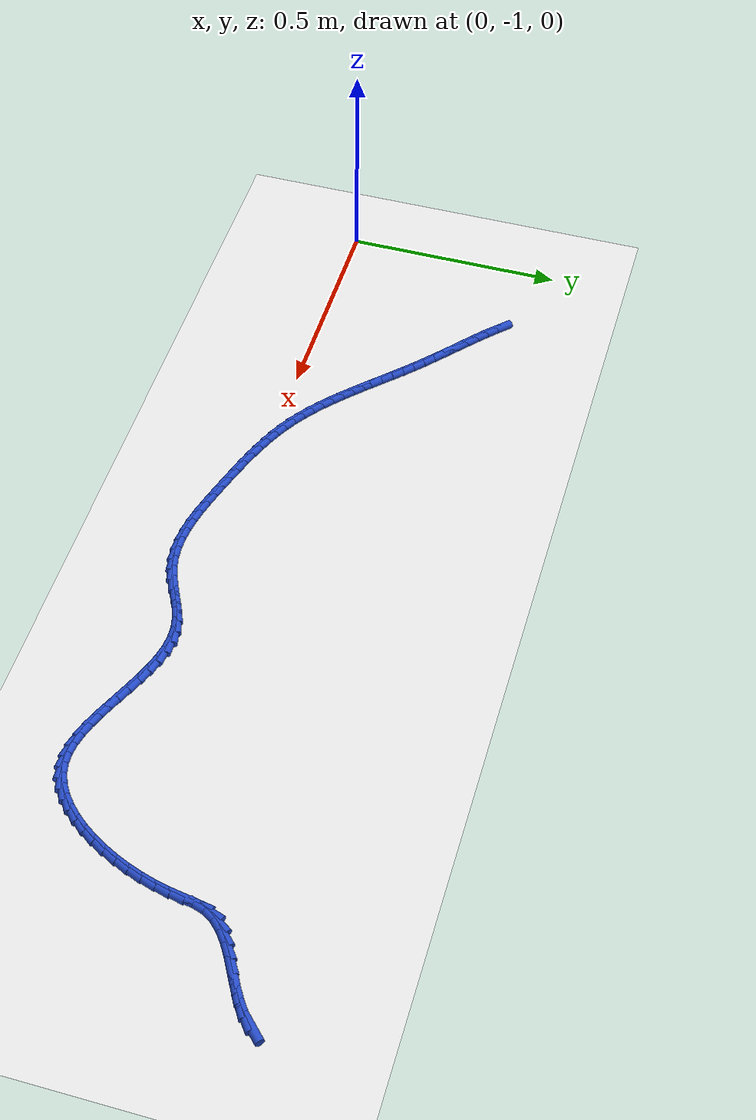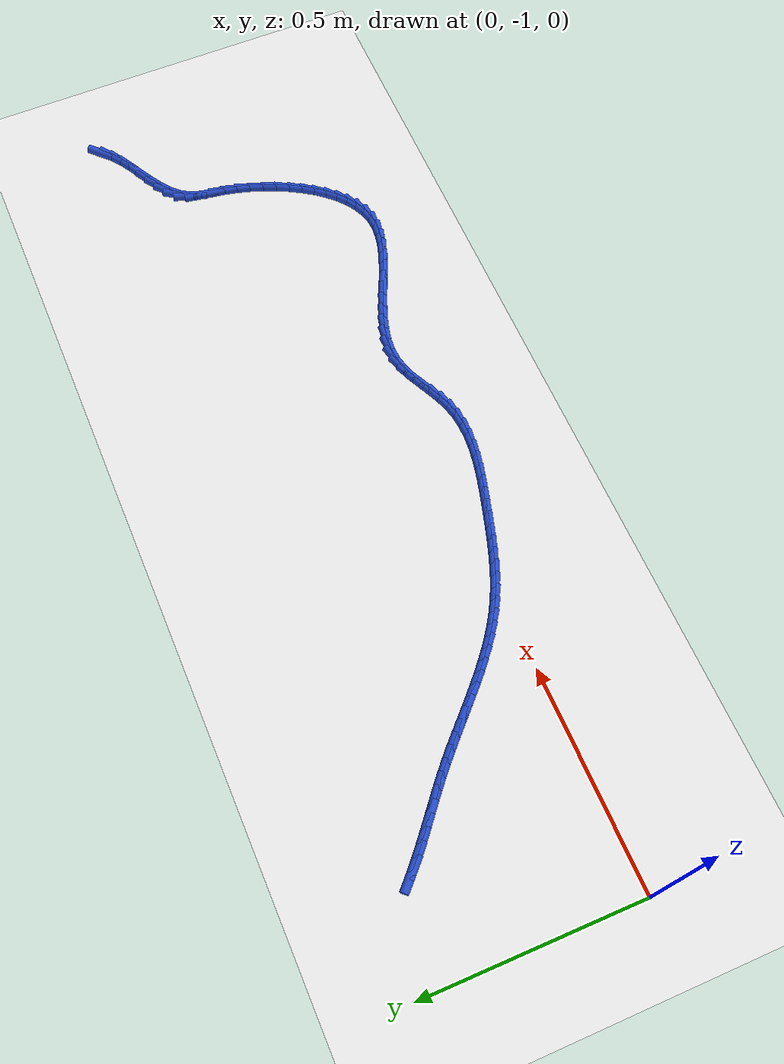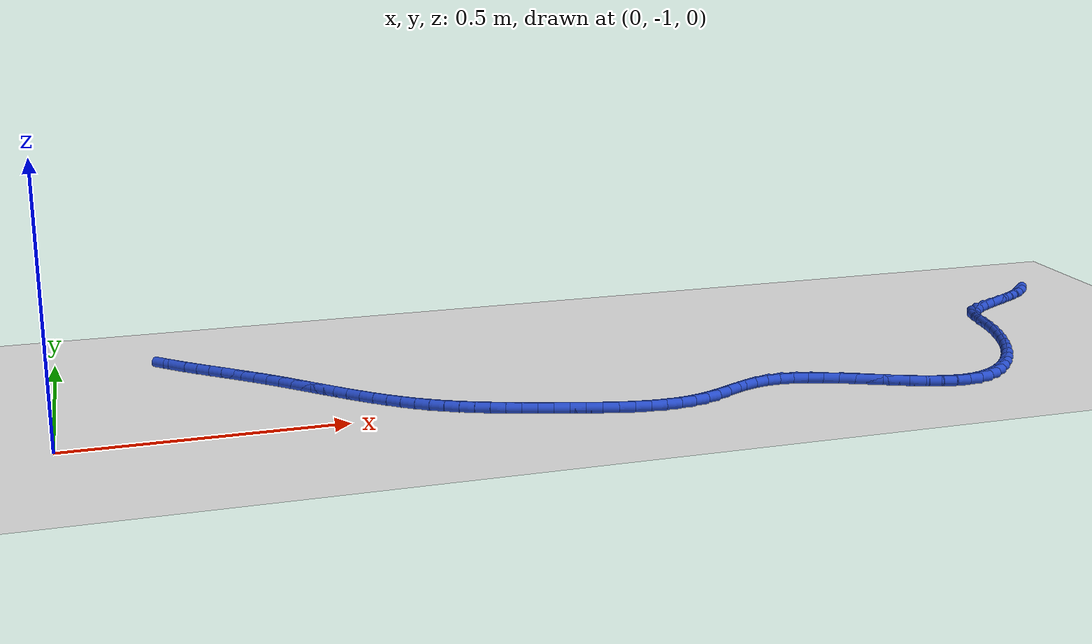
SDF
<sdf version="1.6">
 <world name="default">
  <model name="ground_plane">
   <static>1</static>
   <link name="link">
    <collision name="collision">
     <geometry><plane><normal>0 0 1</normal><size>100 100</size></plane></geometry>
     <surface><friction><ode><mu>100</mu><mu2>50</mu2></ode></friction></surface>
    </collision>
    <visual name="visual">
     <cast_shadows>0</cast_shadows>
     <geometry><plane><normal>0 0 1</normal><size>100 100</size></plane></geometry>
     <material>
      <script><uri>file://media/materials/scripts/gazebo.material</uri><name>Gazebo/WhiteGlow</name></script>
     </material>
    </visual>
   </link>
  </model>
  <model name="line">
   <link name="link_144">
    <pose>2.095544275979614 -0.5912329604137347 0.01 0 1.57 0.7838261642385299</pose>
    <collision name="collision">
     <geometry><cylinder><radius>0.01</radius><length>0.08</length></cylinder></geometry>
    </collision>
    <visual name="visual">
     <material>
      <script><name>Gazebo/Blue</name><uri>file://media/materials/scripts/gazebo.material</uri></script>
     </material>
     <geometry><cylinder><radius>0.01</radius><length>0.08</length></cylinder></geometry>
    </visual>
   </link>
   <link name="link_145">
    <pose>2.077030777775283 -0.6096883435198687 0.01 0 1.57 0.6331716686403083</pose>
    <collision name="collision">
     <geometry><cylinder><radius>0.01</radius><length>0.08</length></cylinder></geometry>
    </collision>
    <visual name="visual">
     <material>
      <script><name>Gazebo/Blue</name><uri>file://media/materials/scripts/gazebo.material</uri></script>
     </material>
     <geometry><cylinder><radius>0.01</radius><length>0.08</length></cylinder></geometry>
    </visual>
   </link>
   <link name="link_146">
    <pose>2.0545377420101216 -0.6261978664672151 0.01 0 1.57 0.5445922062567952</pose>
    <collision name="collision">
     <geometry><cylinder><radius>0.01</radius><length>0.08</length></cylinder></geometry>
    </collision>
    <visual name="visual">
     <material>
      <script><name>Gazebo/Blue</name><uri>file://media/materials/scripts/gazebo.material</uri></script>
     </material>
     <geometry><cylinder><radius>0.01</radius><length>0.08</length></cylinder></geometry>
    </visual>
   </link>
   <link name="link_147">
    <pose>2.02936120839878 -0.641447019878067 0.01 0 1.57 0.5048181021281126</pose>
    <collision name="collision">
     <geometry><cylinder><radius>0.01</radius><length>0.08</length></cylinder></geometry>
    </collision>
    <visual name="visual">
     <material>
      <script><name>Gazebo/Blue</name><uri>file://media/materials/scripts/gazebo.material</uri></script>
     </material>
     <geometry><cylinder><radius>0.01</radius><length>0.08</length></cylinder></geometry>
    </visual>
   </link>
   <link name="link_148">
    <pose>2.0028012377854947 -0.6561233981942479 0.01 0 1.57 0.5067926683065227</pose>
    <collision name="collision">
     <geometry><cylinder><radius>0.01</radius><length>0.08</length></cylinder></geometry>
    </collision>
    <visual name="visual">
     <material>
      <script><name>Gazebo/Blue</name><uri>file://media/materials/scripts/gazebo.material</uri></script>
     </material>
     <geometry><cylinder><radius>0.01</radius><length>0.08</length></cylinder></geometry>
    </visual>
   </link>
   <link name="link_149">
    <pose>1.9761578910144972 -0.6709145958575814 0.01 0 1.57 0.5501255422974013</pose>
    <collision name="collision">
     <geometry><cylinder><radius>0.01</radius><length>0.08</length></cylinder></geometry>
    </collision>
    <visual name="visual">
     <material>
      <script><name>Gazebo/Blue</name><uri>file://media/materials/scripts/gazebo.material</uri></script>
     </material>
     <geometry><cylinder><radius>0.01</radius><length>0.08</length></cylinder></geometry>
    </visual>
   </link>
   <link name="link_150">
    <pose>1.9507312289300236 -0.6865082073098914 0.01 0 1.57 0.6407348657567844</pose>
    <collision name="collision">
     <geometry><cylinder><radius>0.01</radius><length>0.08</length></cylinder></geometry>
    </collision>
    <visual name="visual">
     <material>
      <script><name>Gazebo/Blue</name><uri>file://media/materials/scripts/gazebo.material</uri></script>
     </material>
     <geometry><cylinder><radius>0.01</radius><length>0.08</length></cylinder></geometry>
    </visual>
   </link>
   <link name="link_151">
    <pose>1.9278213123763068 -0.7035918269930009 0.01 0 1.57 0.7897812692770415</pose>
    <collision name="collision">
     <geometry><cylinder><radius>0.01</radius><length>0.08</length></cylinder></geometry>
    </collision>
    <visual name="visual">
     <material>
      <script><name>Gazebo/Blue</name><uri>file://media/materials/scripts/gazebo.material</uri></script>
     </material>
     <geometry><cylinder><radius>0.01</radius><length>0.08</length></cylinder></geometry>
    </visual>
   </link>
   <link name="link_152">
    <pose>1.908728202197583 -0.7228530493487346 0.01 0 1.57 1.0074263640930883</pose>
    <collision name="collision">
     <geometry><cylinder><radius>0.01</radius><length>0.08</length></cylinder></geometry>
    </collision>
    <visual name="visual">
     <material>
      <script><name>Gazebo/Blue</name><uri>file://media/materials/scripts/gazebo.material</uri></script>
     </material>
     <geometry><cylinder><radius>0.01</radius><length>0.08</length></cylinder></geometry>
    </visual>
   </link>
   <link name="link_153">
    <pose>1.8947519592380844 -0.7449794688189154 0.01 0 1.57 1.2640641110475357</pose>
    <collision name="collision">
     <geometry><cylinder><radius>0.01</radius><length>0.08</length></cylinder></geometry>
    </collision>
    <visual name="visual">
     <material>
      <script><name>Gazebo/Blue</name><uri>file://media/materials/scripts/gazebo.material</uri></script>
     </material>
     <geometry><cylinder><radius>0.01</radius><length>0.08</length></cylinder></geometry>
    </visual>
   </link>
   <link name="link_154">
    <pose>1.8866791675509162 -0.7704675449378441 0.01 0 1.57 1.40738361437605</pose>
    <collision name="collision">
     <geometry><cylinder><radius>0.01</radius><length>0.08</length></cylinder></geometry>
    </collision>
    <visual name="visual">
     <material>
      <script><name>Gazebo/Blue</name><uri>file://media/materials/scripts/gazebo.material</uri></script>
     </material>
     <geometry><cylinder><radius>0.01</radius><length>0.08</length></cylinder></geometry>
    </visual>
   </link>
   <link name="link_155">
    <pose>1.882040323498621 -0.7986017018949466 0.01 0 1.57 1.4082797696872005</pose>
    <collision name="collision">
     <geometry><cylinder><radius>0.01</radius><length>0.08</length></cylinder></geometry>
    </collision>
    <visual name="visual">
     <material>
      <script><name>Gazebo/Blue</name><uri>file://media/materials/scripts/gazebo.material</uri></script>
     </material>
     <geometry><cylinder><radius>0.01</radius><length>0.08</length></cylinder></geometry>
    </visual>
   </link>
   <link name="link_156">
    <pose>1.8771854437730173 -0.8282113773538302 0.01 0 1.57 1.349111790098747</pose>
    <collision name="collision">
     <geometry><cylinder><radius>0.01</radius><length>0.08</length></cylinder></geometry>
    </collision>
    <visual name="visual">
     <material>
      <script><name>Gazebo/Blue</name><uri>file://media/materials/scripts/gazebo.material</uri></script>
     </material>
     <geometry><cylinder><radius>0.01</radius><length>0.08</length></cylinder></geometry>
    </visual>
   </link>
   <link name="link_157">
    <pose>1.8703566638727402 -0.8585091472446927 0.01 0 1.57 1.2910517976575846</pose>
    <collision name="collision">
     <geometry><cylinder><radius>0.01</radius><length>0.08</length></cylinder></geometry>
    </collision>
    <visual name="visual">
     <material>
      <script><name>Gazebo/Blue</name><uri>file://media/materials/scripts/gazebo.material</uri></script>
     </material>
     <geometry><cylinder><radius>0.01</radius><length>0.08</length></cylinder></geometry>
    </visual>
   </link>
   <link name="link_158">
    <pose>1.861577560774842 -0.8890687818456128 0.01 0 1.57 1.2343122643390556</pose>
    <collision name="collision">
     <geometry><cylinder><radius>0.01</radius><length>0.08</length></cylinder></geometry>
    </collision>
    <visual name="visual">
     <material>
      <script><name>Gazebo/Blue</name><uri>file://media/materials/scripts/gazebo.material</uri></script>
     </material>
     <geometry><cylinder><radius>0.01</radius><length>0.08</length></cylinder></geometry>
    </visual>
   </link>
   <link name="link_159">
    <pose>1.8509408229411284 -0.9194780640631874 0.01 0 1.57 1.1769889881552476</pose>
    <collision name="collision">
     <geometry><cylinder><radius>0.01</radius><length>0.08</length></cylinder></geometry>
    </collision>
    <visual name="visual">
     <material>
      <script><name>Gazebo/Blue</name><uri>file://media/materials/scripts/gazebo.material</uri></script>
     </material>
     <geometry><cylinder><radius>0.01</radius><length>0.08</length></cylinder></geometry>
    </visual>
   </link>
   <link name="link_160">
    <pose>1.8385391388334051 -0.9493247768040147 0.01 0 1.57 1.117230032728141</pose>
    <collision name="collision">
     <geometry><cylinder><radius>0.01</radius><length>0.08</length></cylinder></geometry>
    </collision>
    <visual name="visual">
     <material>
      <script><name>Gazebo/Blue</name><uri>file://media/materials/scripts/gazebo.material</uri></script>
     </material>
     <geometry><cylinder><radius>0.01</radius><length>0.08</length></cylinder></geometry>
    </visual>
   </link>
   <link name="link_161">
    <pose>1.8244651969134793 -0.9781967029746926 0.01 0 1.57 1.053081972207311</pose>
    <collision name="collision">
     <geometry><cylinder><radius>0.01</radius><length>0.08</length></cylinder></geometry>
    </collision>
    <visual name="visual">
     <material>
      <script><name>Gazebo/Blue</name><uri>file://media/materials/scripts/gazebo.material</uri></script>
     </material>
     <geometry><cylinder><radius>0.01</radius><length>0.08</length></cylinder></geometry>
    </visual>
   </link>
   <link name="link_162">
    <pose>1.8088116856431558 -1.0056816254818184 0.01 0 1.57 0.9823466789098032</pose>
    <collision name="collision">
     <geometry><cylinder><radius>0.01</radius><length>0.08</length></cylinder></geometry>
    </collision>
    <visual name="visual">
     <material>
      <script><name>Gazebo/Blue</name><uri>file://media/materials/scripts/gazebo.material</uri></script>
     </material>
     <geometry><cylinder><radius>0.01</radius><length>0.08</length></cylinder></geometry>
    </visual>
   </link>
   <link name="link_163">
    <pose>1.7916712934842414 -1.0313673272319903 0.01 0 1.57 0.9024473128592188</pose>
    <collision name="collision">
     <geometry><cylinder><radius>0.01</radius><length>0.08</length></cylinder></geometry>
    </collision>
    <visual name="visual">
     <material>
      <script><name>Gazebo/Blue</name><uri>file://media/materials/scripts/gazebo.material</uri></script>
     </material>
     <geometry><cylinder><radius>0.01</radius><length>0.08</length></cylinder></geometry>
    </visual>
   </link>
   <link name="link_164">
    <pose>1.773136708898542 -1.054841591131806 0.01 0 1.57 0.8103279386347615</pose>
    <collision name="collision">
     <geometry><cylinder><radius>0.01</radius><length>0.08</length></cylinder></geometry>
    </collision>
    <visual name="visual">
     <material>
      <script><name>Gazebo/Blue</name><uri>file://media/materials/scripts/gazebo.material</uri></script>
     </material>
     <geometry><cylinder><radius>0.01</radius><length>0.08</length></cylinder></geometry>
    </visual>
   </link>
   <link name="link_165">
    <pose>1.753300620347863 -1.075692200087863 0.01 0 1.57 0.7024648672197166</pose>
    <collision name="collision">
     <geometry><cylinder><radius>0.01</radius><length>0.08</length></cylinder></geometry>
    </collision>
    <visual name="visual">
     <material>
      <script><name>Gazebo/Blue</name><uri>file://media/materials/scripts/gazebo.material</uri></script>
     </material>
     <geometry><cylinder><radius>0.01</radius><length>0.08</length></cylinder></geometry>
    </visual>
   </link>
   <link name="link_166">
    <pose>1.7322557162940104 -1.093506937006759 0.01 0 1.57 0.5751681352866296</pose>
    <collision name="collision">
     <geometry><cylinder><radius>0.01</radius><length>0.08</length></cylinder></geometry>
    </collision>
    <visual name="visual">
     <material>
      <script><name>Gazebo/Blue</name><uri>file://media/materials/scripts/gazebo.material</uri></script>
     </material>
     <geometry><cylinder><radius>0.01</radius><length>0.08</length></cylinder></geometry>
    </visual>
   </link>
   <link name="link_167">
    <pose>1.7100946851987913 -1.107873584795092 0.01 0 1.57 0.4254810826406344</pose>
    <collision name="collision">
     <geometry><cylinder><radius>0.01</radius><length>0.08</length></cylinder></geometry>
    </collision>
    <visual name="visual">
     <material>
      <script><name>Gazebo/Blue</name><uri>file://media/materials/scripts/gazebo.material</uri></script>
     </material>
     <geometry><cylinder><radius>0.01</radius><length>0.08</length></cylinder></geometry>
    </visual>
   </link>
   <link name="link_168">
    <pose>1.6869102155240108 -1.1183799263594598 0.01 0 1.57 0.25296384431243624</pose>
    <collision name="collision">
     <geometry><cylinder><radius>0.01</radius><length>0.08</length></cylinder></geometry>
    </collision>
    <visual name="visual">
     <material>
      <script><name>Gazebo/Blue</name><uri>file://media/materials/scripts/gazebo.material</uri></script>
     </material>
     <geometry><cylinder><radius>0.01</radius><length>0.08</length></cylinder></geometry>
    </visual>
   </link>
   <link name="link_169">
    <pose>1.6627949957314752 -1.1246137446064597 0.01 0 1.57 0.06875198058997602</pose>
    <collision name="collision">
     <geometry><cylinder><radius>0.01</radius><length>0.08</length></cylinder></geometry>
    </collision>
    <visual name="visual">
     <material>
      <script><name>Gazebo/Blue</name><uri>file://media/materials/scripts/gazebo.material</uri></script>
     </material>
     <geometry><cylinder><radius>0.01</radius><length>0.08</length></cylinder></geometry>
    </visual>
   </link>
   <link name="link_170">
    <pose>1.6378424986751843 -1.1263319863348733 0.01 0 1.57 -0.090091192279159</pose>
    <collision name="collision">
     <geometry><cylinder><radius>0.01</radius><length>0.08</length></cylinder></geometry>
    </collision>
    <visual name="visual">
     <material>
      <script><name>Gazebo/Blue</name><uri>file://media/materials/scripts/gazebo.material</uri></script>
     </material>
     <geometry><cylinder><radius>0.01</radius><length>0.08</length></cylinder></geometry>
    </visual>
   </link>
   <link name="link_171">
    <pose>1.6121495329567548 -1.1240109936336162 0.01 0 1.57 -0.21288288566772465</pose>
    <collision name="collision">
     <geometry><cylinder><radius>0.01</radius><length>0.08</length></cylinder></geometry>
    </collision>
    <visual name="visual">
     <material>
      <script><name>Gazebo/Blue</name><uri>file://media/materials/scripts/gazebo.material</uri></script>
     </material>
     <geometry><cylinder><radius>0.01</radius><length>0.08</length></cylinder></geometry>
    </visual>
   </link>
   <link name="link_172">
    <pose>1.5858137937492336 -1.1183183087018236 0.01 0 1.57 -0.30276888596608037</pose>
    <collision name="collision">
     <geometry><cylinder><radius>0.01</radius><length>0.08</length></cylinder></geometry>
    </collision>
    <visual name="visual">
     <material>
      <script><name>Gazebo/Blue</name><uri>file://media/materials/scripts/gazebo.material</uri></script>
     </material>
     <geometry><cylinder><radius>0.01</radius><length>0.08</length></cylinder></geometry>
    </visual>
   </link>
   <link name="link_173">
    <pose>1.5589329762327635 -1.1099214752689632 0.01 0 1.57 -0.3647039736259027</pose>
    <collision name="collision">
     <geometry><cylinder><radius>0.01</radius><length>0.08</length></cylinder></geometry>
    </collision>
    <visual name="visual">
     <material>
      <script><name>Gazebo/Blue</name><uri>file://media/materials/scripts/gazebo.material</uri></script>
     </material>
     <geometry><cylinder><radius>0.01</radius><length>0.08</length></cylinder></geometry>
    </visual>
   </link>
   <link name="link_174">
    <pose>1.5316047755874882 -1.0994880370645033 0.01 0 1.57 -0.40307565858678485</pose>
    <collision name="collision">
     <geometry><cylinder><radius>0.01</radius><length>0.08</length></cylinder></geometry>
    </collision>
    <visual name="visual">
     <material>
      <script><name>Gazebo/Blue</name><uri>file://media/materials/scripts/gazebo.material</uri></script>
     </material>
     <geometry><cylinder><radius>0.01</radius><length>0.08</length></cylinder></geometry>
    </visual>
   </link>
   <link name="link_175">
    <pose>1.5039268869935507 -1.0876855378179113 0.01 0 1.57 -0.4209338923944358</pose>
    <collision name="collision">
     <geometry><cylinder><radius>0.01</radius><length>0.08</length></cylinder></geometry>
    </collision>
    <visual name="visual">
     <material>
      <script><name>Gazebo/Blue</name><uri>file://media/materials/scripts/gazebo.material</uri></script>
     </material>
     <geometry><cylinder><radius>0.01</radius><length>0.08</length></cylinder></geometry>
    </visual>
   </link>
   <link name="link_176">
    <pose>1.4759970056310951 -1.0751815212586564 0.01 0 1.57 -0.41989213759348026</pose>
    <collision name="collision">
     <geometry><cylinder><radius>0.01</radius><length>0.08</length></cylinder></geometry>
    </collision>
    <visual name="visual">
     <material>
      <script><name>Gazebo/Blue</name><uri>file://media/materials/scripts/gazebo.material</uri></script>
     </material>
     <geometry><cylinder><radius>0.01</radius><length>0.08</length></cylinder></geometry>
    </visual>
   </link>
   <link name="link_177">
    <pose>1.4479128266802626 -1.0626435311162048 0.01 0 1.57 -0.40020161842948865</pose>
    <collision name="collision">
     <geometry><cylinder><radius>0.01</radius><length>0.08</length></cylinder></geometry>
    </collision>
    <visual name="visual">
     <material>
      <script><name>Gazebo/Blue</name><uri>file://media/materials/scripts/gazebo.material</uri></script>
     </material>
     <geometry><cylinder><radius>0.01</radius><length>0.08</length></cylinder></geometry>
    </visual>
   </link>
   <link name="link_178">
    <pose>1.4197720453211973 -1.050739111120026 0.01 0 1.57 -0.3608258814761052</pose>
    <collision name="collision">
     <geometry><cylinder><radius>0.01</radius><length>0.08</length></cylinder></geometry>
    </collision>
    <visual name="visual">
     <material>
      <script><name>Gazebo/Blue</name><uri>file://media/materials/scripts/gazebo.material</uri></script>
     </material>
     <geometry><cylinder><radius>0.01</radius><length>0.08</length></cylinder></geometry>
    </visual>
   </link>
   <link name="link_179">
    <pose>1.3916723567340425 -1.0401358049995866 0.01 0 1.57 -0.29952103471139074</pose>
    <collision name="collision">
     <geometry><cylinder><radius>0.01</radius><length>0.08</length></cylinder></geometry>
    </collision>
    <visual name="visual">
     <material>
      <script><name>Gazebo/Blue</name><uri>file://media/materials/scripts/gazebo.material</uri></script>
     </material>
     <geometry><cylinder><radius>0.01</radius><length>0.08</length></cylinder></geometry>
    </visual>
   </link>
   <link name="link_180">
    <pose>1.3637114560989416 -1.0315011564843557 0.01 0 1.57 -0.2130754392485611</pose>
    <collision name="collision">
     <geometry><cylinder><radius>0.01</radius><length>0.08</length></cylinder></geometry>
    </collision>
    <visual name="visual">
     <material>
      <script><name>Gazebo/Blue</name><uri>file://media/materials/scripts/gazebo.material</uri></script>
     </material>
     <geometry><cylinder><radius>0.01</radius><length>0.08</length></cylinder></geometry>
    </visual>
   </link>
   <link name="link_181">
    <pose>1.335987038596037 -1.0255027093038007 0.01 0 1.57 -0.09806625804564614</pose>
    <collision name="collision">
     <geometry><cylinder><radius>0.01</radius><length>0.08</length></cylinder></geometry>
    </collision>
    <visual name="visual">
     <material>
      <script><name>Gazebo/Blue</name><uri>file://media/materials/scripts/gazebo.material</uri></script>
     </material>
     <geometry><cylinder><radius>0.01</radius><length>0.08</length></cylinder></geometry>
    </visual>
   </link>
   <link name="link_182">
    <pose>1.3085967994054726 -1.0228080071873895 0.01 0 1.57 0.047318660425284834</pose>
    <collision name="collision">
     <geometry><cylinder><radius>0.01</radius><length>0.08</length></cylinder></geometry>
    </collision>
    <visual name="visual">
     <material>
      <script><name>Gazebo/Blue</name><uri>file://media/materials/scripts/gazebo.material</uri></script>
     </material>
     <geometry><cylinder><radius>0.01</radius><length>0.08</length></cylinder></geometry>
    </visual>
   </link>
   <link name="link_183">
    <pose>1.281638433707391 -1.0240845938645902 0.01 0 1.57 0.21542420478952698</pose>
    <collision name="collision">
     <geometry><cylinder><radius>0.01</radius><length>0.08</length></cylinder></geometry>
    </collision>
    <visual name="visual">
     <material>
      <script><name>Gazebo/Blue</name><uri>file://media/materials/scripts/gazebo.material</uri></script>
     </material>
     <geometry><cylinder><radius>0.01</radius><length>0.08</length></cylinder></geometry>
    </visual>
   </link>
   <link name="link_184">
    <pose>1.2551919134345522 -1.0298716131920271 0.01 0 1.57 0.3514676471819786</pose>
    <collision name="collision">
     <geometry><cylinder><radius>0.01</radius><length>0.08</length></cylinder></geometry>
    </collision>
    <visual name="visual">
     <material>
      <script><name>Gazebo/Blue</name><uri>file://media/materials/scripts/gazebo.material</uri></script>
     </material>
     <geometry><cylinder><radius>0.01</radius><length>0.08</length></cylinder></geometry>
    </visual>
   </link>
   <link name="link_185">
    <pose>1.2291590742407301 -1.0394176624873226 0.01 0 1.57 0.42891940744949536</pose>
    <collision name="collision">
     <geometry><cylinder><radius>0.01</radius><length>0.08</length></cylinder></geometry>
    </collision>
    <visual name="visual">
     <material>
      <script><name>Gazebo/Blue</name><uri>file://media/materials/scripts/gazebo.material</uri></script>
     </material>
     <geometry><cylinder><radius>0.01</radius><length>0.08</length></cylinder></geometry>
    </visual>
   </link>
   <link name="link_186">
    <pose>1.2033388191210377 -1.051225621311203 0.01 0 1.57 0.45301260273969934</pose>
    <collision name="collision">
     <geometry><cylinder><radius>0.01</radius><length>0.08</length></cylinder></geometry>
    </collision>
    <visual name="visual">
     <material>
      <script><name>Gazebo/Blue</name><uri>file://media/materials/scripts/gazebo.material</uri></script>
     </material>
     <geometry><cylinder><radius>0.01</radius><length>0.08</length></cylinder></geometry>
    </visual>
   </link>
   <link name="link_187">
    <pose>1.1775288019663568 -1.063789319820481 0.01 0 1.57 0.4264400791790593</pose>
    <collision name="collision">
     <geometry><cylinder><radius>0.01</radius><length>0.08</length></cylinder></geometry>
    </collision>
    <visual name="visual">
     <material>
      <script><name>Gazebo/Blue</name><uri>file://media/materials/scripts/gazebo.material</uri></script>
     </material>
     <geometry><cylinder><radius>0.01</radius><length>0.08</length></cylinder></geometry>
    </visual>
   </link>
   <link name="link_188">
    <pose>1.1515266766675705 -1.075602588171971 0.01 0 1.57 0.34737192918085147</pose>
    <collision name="collision">
     <geometry><cylinder><radius>0.01</radius><length>0.08</length></cylinder></geometry>
    </collision>
    <visual name="visual">
     <material>
      <script><name>Gazebo/Blue</name><uri>file://media/materials/scripts/gazebo.material</uri></script>
     </material>
     <geometry><cylinder><radius>0.01</radius><length>0.08</length></cylinder></geometry>
    </visual>
   </link>
   <link name="link_189">
    <pose>1.125130140382735 -1.0851595357552208 0.01 0 1.57 0.2266652678789258</pose>
    <collision name="collision">
     <geometry><cylinder><radius>0.01</radius><length>0.08</length></cylinder></geometry>
    </collision>
    <visual name="visual">
     <material>
      <script><name>Gazebo/Blue</name><uri>file://media/materials/scripts/gazebo.material</uri></script>
     </material>
     <geometry><cylinder><radius>0.01</radius><length>0.08</length></cylinder></geometry>
    </visual>
   </link>
   <link name="link_190">
    <pose>1.0982013213670907 -1.0913700900008554 0.01 0 1.57 0.10992228570247344</pose>
    <collision name="collision">
     <geometry><cylinder><radius>0.01</radius><length>0.08</length></cylinder></geometry>
    </collision>
    <visual name="visual">
     <material>
      <script><name>Gazebo/Blue</name><uri>file://media/materials/scripts/gazebo.material</uri></script>
     </material>
     <geometry><cylinder><radius>0.01</radius><length>0.08</length></cylinder></geometry>
    </visual>
   </link>
   <link name="link_191">
    <pose>1.0707961202481746 -1.0943947242992123 0.01 0 1.57 0.008395724677304374</pose>
    <collision name="collision">
     <geometry><cylinder><radius>0.01</radius><length>0.08</length></cylinder></geometry>
    </collision>
    <visual name="visual">
     <material>
      <script><name>Gazebo/Blue</name><uri>file://media/materials/scripts/gazebo.material</uri></script>
     </material>
     <geometry><cylinder><radius>0.01</radius><length>0.08</length></cylinder></geometry>
    </visual>
   </link>
   <link name="link_192">
    <pose>1.04300671613728 -1.0946280419671464 0.01 0 1.57 -0.07688821165952751</pose>
    <collision name="collision">
     <geometry><cylinder><radius>0.01</radius><length>0.08</length></cylinder></geometry>
    </collision>
    <visual name="visual">
     <material>
      <script><name>Gazebo/Blue</name><uri>file://media/materials/scripts/gazebo.material</uri></script>
     </material>
     <geometry><cylinder><radius>0.01</radius><length>0.08</length></cylinder></geometry>
    </visual>
   </link>
   <link name="link_193">
    <pose>1.0149252881457007 -1.0924646463215133 0.01 0 1.57 -0.14623704404957283</pose>
    <collision name="collision">
     <geometry><cylinder><radius>0.01</radius><length>0.08</length></cylinder></geometry>
    </collision>
    <visual name="visual">
     <material>
      <script><name>Gazebo/Blue</name><uri>file://media/materials/scripts/gazebo.material</uri></script>
     </material>
     <geometry><cylinder><radius>0.01</radius><length>0.08</length></cylinder></geometry>
    </visual>
   </link>
   <link name="link_194">
    <pose>0.9866440153847306 -1.0882991406791678 0.01 0 1.57 -0.20061874521563136</pose>
    <collision name="collision">
     <geometry><cylinder><radius>0.01</radius><length>0.08</length></cylinder></geometry>
    </collision>
    <visual name="visual">
     <material>
      <script><name>Gazebo/Blue</name><uri>file://media/materials/scripts/gazebo.material</uri></script>
     </material>
     <geometry><cylinder><radius>0.01</radius><length>0.08</length></cylinder></geometry>
    </visual>
   </link>
   <link name="link_195">
    <pose>0.9582550769656631 -1.0825261283569654 0.01 0 1.57 -0.24115821395360798</pose>
    <collision name="collision">
     <geometry><cylinder><radius>0.01</radius><length>0.08</length></cylinder></geometry>
    </collision>
    <visual name="visual">
     <material>
      <script><name>Gazebo/Blue</name><uri>file://media/materials/scripts/gazebo.material</uri></script>
     </material>
     <geometry><cylinder><radius>0.01</radius><length>0.08</length></cylinder></geometry>
    </visual>
   </link>
   <link name="link_196">
    <pose>0.929850651999792 -1.0755402126717608 0.01 0 1.57 -0.26882855159061647</pose>
    <collision name="collision">
     <geometry><cylinder><radius>0.01</radius><length>0.08</length></cylinder></geometry>
    </collision>
    <visual name="visual">
     <material>
      <script><name>Gazebo/Blue</name><uri>file://media/materials/scripts/gazebo.material</uri></script>
     </material>
     <geometry><cylinder><radius>0.01</radius><length>0.08</length></cylinder></geometry>
    </visual>
   </link>
   <link name="link_197">
    <pose>0.9015229195984111 -1.06773599694041 0.01 0 1.57 -0.2842820694242588</pose>
    <collision name="collision">
     <geometry><cylinder><radius>0.01</radius><length>0.08</length></cylinder></geometry>
    </collision>
    <visual name="visual">
     <material>
      <script><name>Gazebo/Blue</name><uri>file://media/materials/scripts/gazebo.material</uri></script>
     </material>
     <geometry><cylinder><radius>0.01</radius><length>0.08</length></cylinder></geometry>
    </visual>
   </link>
   <link name="link_198">
    <pose>0.873364058872814 -1.059508084479768 0.01 0 1.57 -0.2906088056534425</pose>
    <collision name="collision">
     <geometry><cylinder><radius>0.01</radius><length>0.08</length></cylinder></geometry>
    </collision>
    <visual name="visual">
     <material>
      <script><name>Gazebo/Blue</name><uri>file://media/materials/scripts/gazebo.material</uri></script>
     </material>
     <geometry><cylinder><radius>0.01</radius><length>0.08</length></cylinder></geometry>
    </visual>
   </link>
   <link name="link_199">
    <pose>0.8454612229190239 -1.0511630179498168 0.01 0 1.57 -0.29954313880037947</pose>
    <collision name="collision">
     <geometry><cylinder><radius>0.01</radius><length>0.08</length></cylinder></geometry>
    </collision>
    <visual name="visual">
     <material>
      <script><name>Gazebo/Blue</name><uri>file://media/materials/scripts/gazebo.material</uri></script>
     </material>
     <geometry><cylinder><radius>0.01</radius><length>0.08</length></cylinder></geometry>
    </visual>
   </link>
   <link name="link_200">
    <pose>0.817880897462634 -1.0426452276575549 0.01 0 1.57 -0.31423987209820237</pose>
    <collision name="collision">
     <geometry><cylinder><radius>0.01</radius><length>0.08</length></cylinder></geometry>
    </collision>
    <visual name="visual">
     <material>
      <script><name>Gazebo/Blue</name><uri>file://media/materials/scripts/gazebo.material</uri></script>
     </material>
     <geometry><cylinder><radius>0.01</radius><length>0.08</length></cylinder></geometry>
    </visual>
   </link>
   <link name="link_201">
    <pose>0.7906842566357092 -1.0338060796453488 0.01 0 1.57 -0.3348759543504548</pose>
    <collision name="collision">
     <geometry><cylinder><radius>0.01</radius><length>0.08</length></cylinder></geometry>
    </collision>
    <visual name="visual">
     <material>
      <script><name>Gazebo/Blue</name><uri>file://media/materials/scripts/gazebo.material</uri></script>
     </material>
     <geometry><cylinder><radius>0.01</radius><length>0.08</length></cylinder></geometry>
    </visual>
   </link>
   <link name="link_202">
    <pose>0.7639324745662758 -1.0244969398848105 0.01 0 1.57 -0.3616272997235385</pose>
    <collision name="collision">
     <geometry><cylinder><radius>0.01</radius><length>0.08</length></cylinder></geometry>
    </collision>
    <visual name="visual">
     <material>
      <script><name>Gazebo/Blue</name><uri>file://media/materials/scripts/gazebo.material</uri></script>
     </material>
     <geometry><cylinder><radius>0.01</radius><length>0.08</length></cylinder></geometry>
    </visual>
   </link>
   <link name="link_203">
    <pose>0.73768672538236 -1.014569174347552 0.01 0 1.57 -0.39464619661434613</pose>
    <collision name="collision">
     <geometry><cylinder><radius>0.01</radius><length>0.08</length></cylinder></geometry>
    </collision>
    <visual name="visual">
     <material>
      <script><name>Gazebo/Blue</name><uri>file://media/materials/scripts/gazebo.material</uri></script>
     </material>
     <geometry><cylinder><radius>0.01</radius><length>0.08</length></cylinder></geometry>
    </visual>
   </link>
   <link name="link_204">
    <pose>0.7120081832119883 -1.0038741490051843 0.01 0 1.57 -0.4340292124558176</pose>
    <collision name="collision">
     <geometry><cylinder><radius>0.01</radius><length>0.08</length></cylinder></geometry>
    </collision>
    <visual name="visual">
     <material>
      <script><name>Gazebo/Blue</name><uri>file://media/materials/scripts/gazebo.material</uri></script>
     </material>
     <geometry><cylinder><radius>0.01</radius><length>0.08</length></cylinder></geometry>
    </visual>
   </link>
   <link name="link_205">
    <pose>0.6869580221831868 -0.9922632298293194 0.01 0 1.57 -0.4797755624839879</pose>
    <collision name="collision">
     <geometry><cylinder><radius>0.01</radius><length>0.08</length></cylinder></geometry>
    </collision>
    <visual name="visual">
     <material>
      <script><name>Gazebo/Blue</name><uri>file://media/materials/scripts/gazebo.material</uri></script>
     </material>
     <geometry><cylinder><radius>0.01</radius><length>0.08</length></cylinder></geometry>
    </visual>
   </link>
   <link name="link_206">
    <pose>0.6625974164239823 -0.9795877827915696 0.01 0 1.57 -0.5316431478999287</pose>
    <collision name="collision">
     <geometry><cylinder><radius>0.01</radius><length>0.08</length></cylinder></geometry>
    </collision>
    <visual name="visual">
     <material>
      <script><name>Gazebo/Blue</name><uri>file://media/materials/scripts/gazebo.material</uri></script>
     </material>
     <geometry><cylinder><radius>0.01</radius><length>0.08</length></cylinder></geometry>
    </visual>
   </link>
   <link name="link_207">
    <pose>0.638986300633533 -0.9657014627300845 0.01 0 1.57 -0.5846548354020518</pose>
    <collision name="collision">
     <geometry><cylinder><radius>0.01</radius><length>0.08</length></cylinder></geometry>
    </collision>
    <visual name="visual">
     <material>
      <script><name>Gazebo/Blue</name><uri>file://media/materials/scripts/gazebo.material</uri></script>
     </material>
     <geometry><cylinder><radius>0.01</radius><length>0.08</length></cylinder></geometry>
    </visual>
   </link>
   <link name="link_208">
    <pose>0.6161238465612819 -0.9505701360717457 0.01 0 1.57 -0.6318216072892445</pose>
    <collision name="collision">
     <geometry><cylinder><radius>0.01</radius><length>0.08</length></cylinder></geometry>
    </collision>
    <visual name="visual">
     <material>
      <script><name>Gazebo/Blue</name><uri>file://media/materials/scripts/gazebo.material</uri></script>
     </material>
     <geometry><cylinder><radius>0.01</radius><length>0.08</length></cylinder></geometry>
    </visual>
   </link>
   <link name="link_209">
    <pose>0.5939221291289551 -0.9343205118861547 0.01 0 1.57 -0.6724906912054615</pose>
    <collision name="collision">
     <geometry><cylinder><radius>0.01</radius><length>0.08</length></cylinder></geometry>
    </collision>
    <visual name="visual">
     <material>
      <script><name>Gazebo/Blue</name><uri>file://media/materials/scripts/gazebo.material</uri></script>
     </material>
     <geometry><cylinder><radius>0.01</radius><length>0.08</length></cylinder></geometry>
    </visual>
   </link>
   <link name="link_210">
    <pose>0.5722865020953128 -0.917091711286398 0.01 0 1.57 -0.7066653250988362</pose>
    <collision name="collision">
     <geometry><cylinder><radius>0.01</radius><length>0.08</length></cylinder></geometry>
    </collision>
    <visual name="visual">
     <material>
      <script><name>Gazebo/Blue</name><uri>file://media/materials/scripts/gazebo.material</uri></script>
     </material>
     <geometry><cylinder><radius>0.01</radius><length>0.08</length></cylinder></geometry>
    </visual>
   </link>
   <link name="link_211">
    <pose>0.551122319219118 -0.8990228553855635 0.01 0 1.57 -0.7344377995852756</pose>
    <collision name="collision">
     <geometry><cylinder><radius>0.01</radius><length>0.08</length></cylinder></geometry>
    </collision>
    <visual name="visual">
     <material>
      <script><name>Gazebo/Blue</name><uri>file://media/materials/scripts/gazebo.material</uri></script>
     </material>
     <geometry><cylinder><radius>0.01</radius><length>0.08</length></cylinder></geometry>
    </visual>
   </link>
   <link name="link_212">
    <pose>0.5303349342591328 -0.8802530652967389 0.01 0 1.57 -0.7559457556932683</pose>
    <collision name="collision">
     <geometry><cylinder><radius>0.01</radius><length>0.08</length></cylinder></geometry>
    </collision>
    <visual name="visual">
     <material>
      <script><name>Gazebo/Blue</name><uri>file://media/materials/scripts/gazebo.material</uri></script>
     </material>
     <geometry><cylinder><radius>0.01</radius><length>0.08</length></cylinder></geometry>
    </visual>
   </link>
   <link name="link_213">
    <pose>0.5098297009741186 -0.8609214621330114 0.01 0 1.57 -0.7713385886990541</pose>
    <collision name="collision">
     <geometry><cylinder><radius>0.01</radius><length>0.08</length></cylinder></geometry>
    </collision>
    <visual name="visual">
     <material>
      <script><name>Gazebo/Blue</name><uri>file://media/materials/scripts/gazebo.material</uri></script>
     </material>
     <geometry><cylinder><radius>0.01</radius><length>0.08</length></cylinder></geometry>
    </visual>
   </link>
   <link name="link_214">
    <pose>0.48951197312283756 -0.8411671670074684 0.01 0 1.57 -0.780753636850347</pose>
    <collision name="collision">
     <geometry><cylinder><radius>0.01</radius><length>0.08</length></cylinder></geometry>
    </collision>
    <visual name="visual">
     <material>
      <script><name>Gazebo/Blue</name><uri>file://media/materials/scripts/gazebo.material</uri></script>
     </material>
     <geometry><cylinder><radius>0.01</radius><length>0.08</length></cylinder></geometry>
    </visual>
   </link>
   <link name="link_215">
    <pose>0.46928710446405153 -0.8211293010331971 0.01 0 1.57 -0.7843008828118009</pose>
    <collision name="collision">
     <geometry><cylinder><radius>0.01</radius><length>0.08</length></cylinder></geometry>
    </collision>
    <visual name="visual">
     <material>
      <script><name>Gazebo/Blue</name><uri>file://media/materials/scripts/gazebo.material</uri></script>
     </material>
     <geometry><cylinder><radius>0.01</radius><length>0.08</length></cylinder></geometry>
    </visual>
   </link>
   <link name="link_216">
    <pose>0.44906044875652257 -0.800946985323286 0.01 0 1.57 -0.7820547492149318</pose>
    <collision name="collision">
     <geometry><cylinder><radius>0.01</radius><length>0.08</length></cylinder></geometry>
    </collision>
    <visual name="visual">
     <material>
      <script><name>Gazebo/Blue</name><uri>file://media/materials/scripts/gazebo.material</uri></script>
     </material>
     <geometry><cylinder><radius>0.01</radius><length>0.08</length></cylinder></geometry>
    </visual>
   </link>
   <link name="link_217">
    <pose>0.42873735975901234 -0.7807593409908214 0.01 0 1.57 -0.7740518633086865</pose>
    <collision name="collision">
     <geometry><cylinder><radius>0.01</radius><length>0.08</length></cylinder></geometry>
    </collision>
    <visual name="visual">
     <material>
      <script><name>Gazebo/Blue</name><uri>file://media/materials/scripts/gazebo.material</uri></script>
     </material>
     <geometry><cylinder><radius>0.01</radius><length>0.08</length></cylinder></geometry>
    </visual>
   </link>
   <link name="link_218">
    <pose>0.4082231912302832 -0.7607054891488916 0.01 0 1.57 -0.7602941441492547</pose>
    <collision name="collision">
     <geometry><cylinder><radius>0.01</radius><length>0.08</length></cylinder></geometry>
    </collision>
    <visual name="visual">
     <material>
      <script><name>Gazebo/Blue</name><uri>file://media/materials/scripts/gazebo.material</uri></script>
     </material>
     <geometry><cylinder><radius>0.01</radius><length>0.08</length></cylinder></geometry>
    </visual>
   </link>
   <link name="link_219">
    <pose>0.38742329692909677 -0.7409245509105836 0.01 0 1.57 -0.7414255294410071</pose>
    <collision name="collision">
     <geometry><cylinder><radius>0.01</radius><length>0.08</length></cylinder></geometry>
    </collision>
    <visual name="visual">
     <material>
      <script><name>Gazebo/Blue</name><uri>file://media/materials/scripts/gazebo.material</uri></script>
     </material>
     <geometry><cylinder><radius>0.01</radius><length>0.08</length></cylinder></geometry>
    </visual>
   </link>
   <link name="link_220">
    <pose>0.36625588285991467 -0.7215414020634903 0.01 0 1.57 -0.7244190674401039</pose>
    <collision name="collision">
     <geometry><cylinder><radius>0.01</radius><length>0.08</length></cylinder></geometry>
    </collision>
    <visual name="visual">
     <material>
      <script><name>Gazebo/Blue</name><uri>file://media/materials/scripts/gazebo.material</uri></script>
     </material>
     <geometry><cylinder><radius>0.01</radius><length>0.08</length></cylinder></geometry>
    </visual>
   </link>
   <link name="link_221">
    <pose>0.34477386668350934 -0.7025316050816477 0.01 0 1.57 -0.7134352256532176</pose>
    <collision name="collision">
     <geometry><cylinder><radius>0.01</radius><length>0.08</length></cylinder></geometry>
    </collision>
    <visual name="visual">
     <material>
      <script><name>Gazebo/Blue</name><uri>file://media/materials/scripts/gazebo.material</uri></script>
     </material>
     <geometry><cylinder><radius>0.01</radius><length>0.08</length></cylinder></geometry>
    </visual>
   </link>
   <link name="link_222">
    <pose>0.3231105721568504 -0.683781600970451 0.01 0 1.57 -0.7085265050065961</pose>
    <collision name="collision">
     <geometry><cylinder><radius>0.01</radius><length>0.08</length></cylinder></geometry>
    </collision>
    <visual name="visual">
     <material>
      <script><name>Gazebo/Blue</name><uri>file://media/materials/scripts/gazebo.material</uri></script>
     </material>
     <geometry><cylinder><radius>0.01</radius><length>0.08</length></cylinder></geometry>
    </visual>
   </link>
   <link name="link_223">
    <pose>0.3014003990335376 -0.6651766381093079 0.01 0 1.57 -0.7097175716090405</pose>
    <collision name="collision">
     <geometry><cylinder><radius>0.01</radius><length>0.08</length></cylinder></geometry>
    </collision>
    <visual name="visual">
     <material>
      <script><name>Gazebo/Blue</name><uri>file://media/materials/scripts/gazebo.material</uri></script>
     </material>
     <geometry><cylinder><radius>0.01</radius><length>0.08</length></cylinder></geometry>
    </visual>
   </link>
   <link name="link_224">
    <pose>0.27977774706717073 -0.6466019648776253 0.01 0 1.57 -0.7170672422877133</pose>
    <collision name="collision">
     <geometry><cylinder><radius>0.01</radius><length>0.08</length></cylinder></geometry>
    </collision>
    <visual name="visual">
     <material>
      <script><name>Gazebo/Blue</name><uri>file://media/materials/scripts/gazebo.material</uri></script>
     </material>
     <geometry><cylinder><radius>0.01</radius><length>0.08</length></cylinder></geometry>
    </visual>
   </link>
   <link name="link_225">
    <pose>0.25837701601134944 -0.627942829654811 0.01 0 1.57 -0.7306681529216746</pose>
    <collision name="collision">
     <geometry><cylinder><radius>0.01</radius><length>0.08</length></cylinder></geometry>
    </collision>
    <visual name="visual">
     <material>
      <script><name>Gazebo/Blue</name><uri>file://media/materials/scripts/gazebo.material</uri></script>
     </material>
     <geometry><cylinder><radius>0.01</radius><length>0.08</length></cylinder></geometry>
    </visual>
   </link>
   <link name="link_226">
    <pose>0.23733260561967362 -0.6090844808202718 0.01 0 1.57 -0.7506395817490117</pose>
    <collision name="collision">
     <geometry><cylinder><radius>0.01</radius><length>0.08</length></cylinder></geometry>
    </collision>
    <visual name="visual">
     <material>
      <script><name>Gazebo/Blue</name><uri>file://media/materials/scripts/gazebo.material</uri></script>
     </material>
     <geometry><cylinder><radius>0.01</radius><length>0.08</length></cylinder></geometry>
    </visual>
   </link>
   <link name="link_227">
    <pose>0.2167789156457431 -0.5899121667534154 0.01 0 1.57 -0.7771124387438909</pose>
    <collision name="collision">
     <geometry><cylinder><radius>0.01</radius><length>0.08</length></cylinder></geometry>
    </collision>
    <visual name="visual">
     <material>
      <script><name>Gazebo/Blue</name><uri>file://media/materials/scripts/gazebo.material</uri></script>
     </material>
     <geometry><cylinder><radius>0.01</radius><length>0.08</length></cylinder></geometry>
    </visual>
   </link>
  </model>
 </world>
</sdf>
